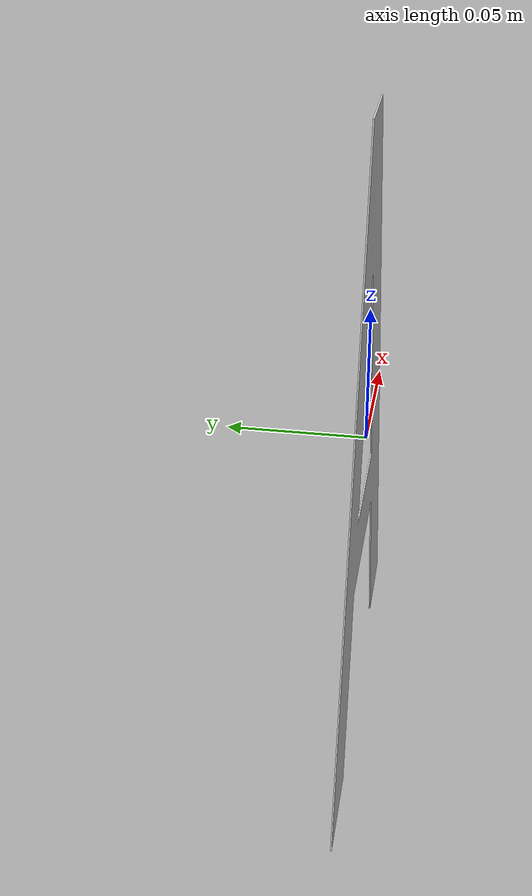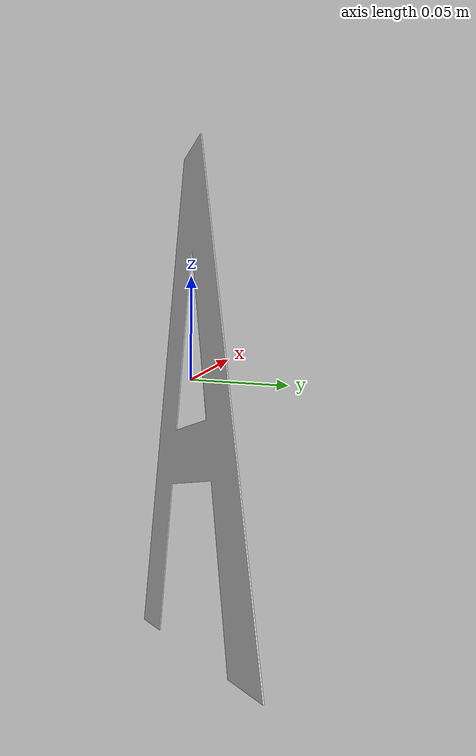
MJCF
<mujoco model="scene_A_edit">
  <compiler angle="degree" meshdir="meshes" texturedir="textures"/>
  <option gravity="0 0 -9.81"/>
  <default>
    <joint armature="0.01" damping="0.5"/>
    <default class="visual">
      <geom contype="0" conaffinity="0" group="2"/>
    </default>
    <default class="collision">
      <geom rgba="0.9 0.9 0.0 0.2" group="3"/>
    </default>
  </default>
  <asset>
    <material name="M_mat0_003" rgba="0.8471 0.8471 0.8471 1.0000"/>
    <mesh name="ImagetostlMesh0002" file="ImagetostlMesh0002.obj" inertia="shell"/>
  </asset>
  <worldbody>
    <body name="imagetostl_mesh_0_002" pos="0.000000 0.000000 0.000000" quat="-0.000000 0.000000 1.000000 0.000000">
      <geom type="mesh" mesh="ImagetostlMesh0002" class="visual" material="M_mat0_003"/>
      <geom name="imagetostl_mesh_0002_aabb" type="box" pos="0.0000 0.0000 0.0014" size="0.0818 0.0050 0.1180" class="collision"/>
    </body>
  </worldbody>
</mujoco>
